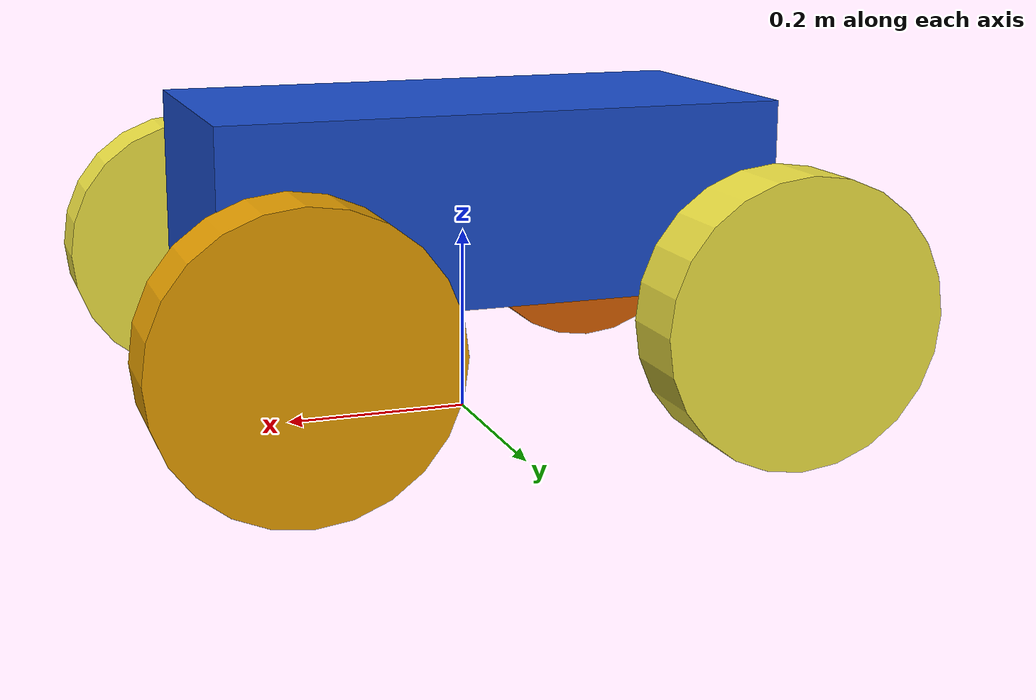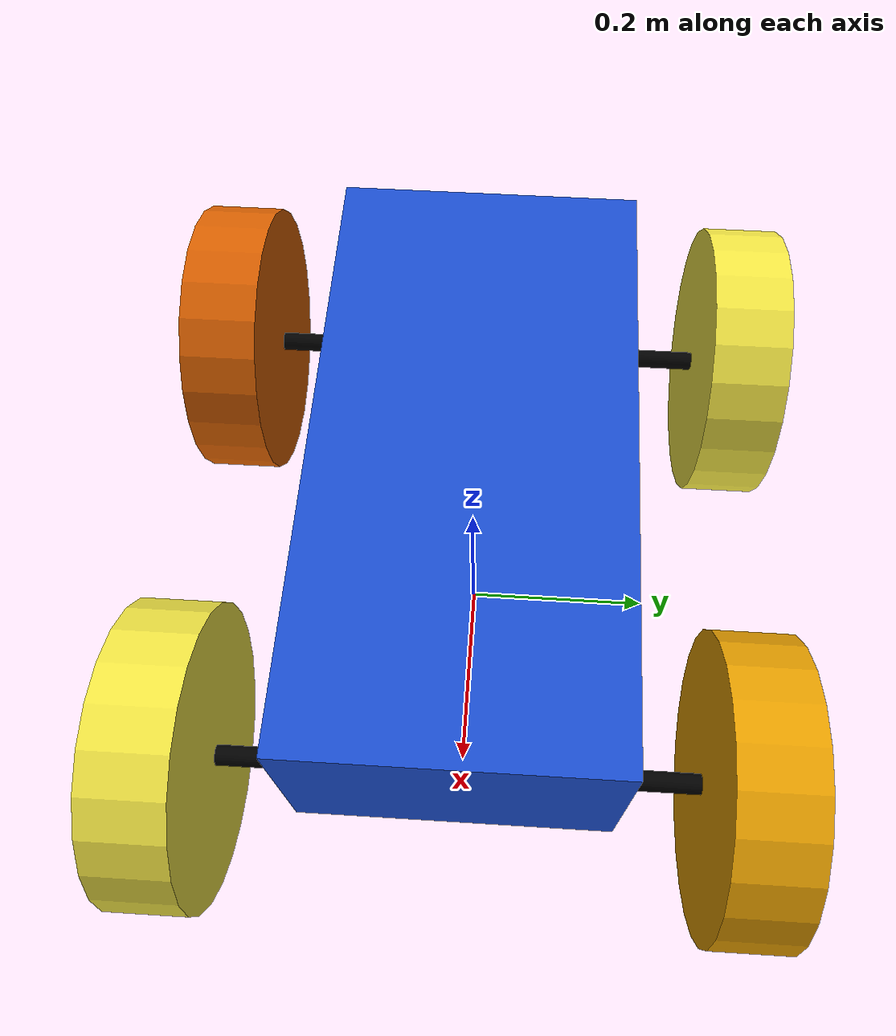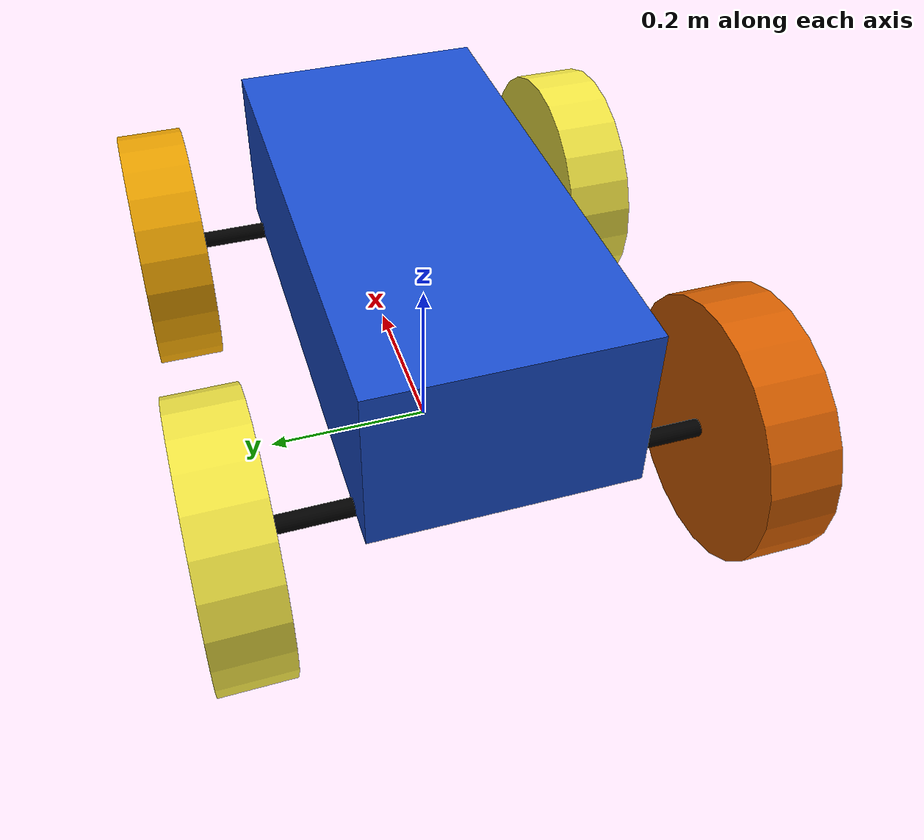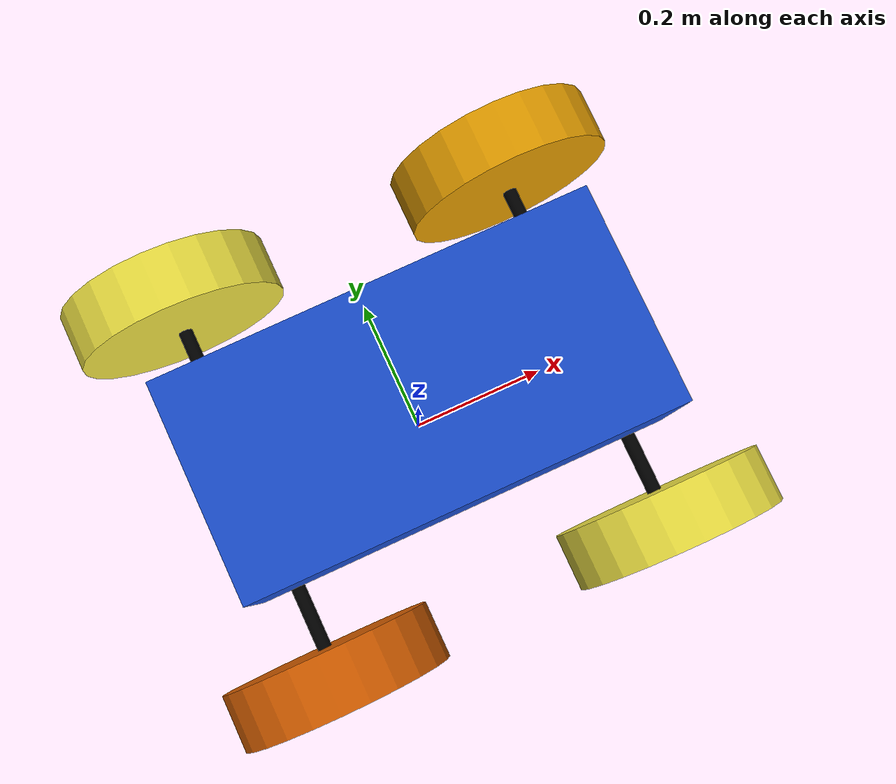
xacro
<?xml version="1.0"?>
<robot name="ackermann_robot" xmlns:xacro="http://www.ros.org/wiki/xacro">
    <xacro:include filename="common_properties.xacro"/>
    <xacro:property name="base_length" value="0.6" />
    <xacro:property name="base_width" value="0.30" />
    <xacro:property name="base_height" value="0.2" />
    <xacro:property name="wheel_radius" value="0.15" />
    <xacro:property name="wheel_length" value="0.08" />
  <!-- ================= PARAMETERS ================= -->

  <!-- ================= CHASSIS ================= -->

  <link name="base_link">

    <visual>
      <geometry>
        <box size="${base_length} ${base_width} ${base_height}"/>
      </geometry>
      <material name="blue">
        <color rgba="0.1 0.3 0.8 1.0"/>
      </material>
      <origin xyz="0 0 0.1" rpy="0 0 0"/>
    </visual>

    <collision>
      <geometry>
        <box size="${base_length} ${base_width} ${base_height}"/>
      </geometry>
      <origin xyz="0 0 0.1" rpy="0 0 0"/>
    </collision>

    <xacro:box_inertia m="15.0" x="${base_length}" y="${base_width}" z="${base_height}" o_xyz="0 0 0" o_rpy="0 0 0" />

  </link>

  <link name="base_footprint_link"/>

  <joint name="base_footprint_joint" type="fixed">
        <parent link="base_footprint_link"/>
        <child link="base_link"/>
        <origin xyz="0 0 0.15" rpy="0 0 0"/>
        <axis xyz="0 0 0" />
  </joint>

<!-- ================= REAR LEFT RACK SUPPORT================= -->

  <link name="rear_left_rack_support_link">
    <visual>
      <geometry>
        <cylinder radius="0.01" length="${base_width/2}"/>
      </geometry>
      <material name="black"/>
    </visual>

    <xacro:wheel_inertia m="1.0" r="0.01" h="${base_width/2}" o_xyz="0 0 0" o_rpy="0 0 0" />

  </link>

  <joint name="base_rear_left_rack_support_joint" type="fixed">
    <parent link="base_link"/>
    <child link="rear_left_rack_support_link"/>

    <origin xyz="${-base_length/2 + 0.05} ${(base_width/2)+0.05} 0" rpy="${pi/2} 0 0"/>

  </joint>

  <!-- ================= REAR LEFT WHEEL ================= -->

  <link name="rear_left_wheel">

    <visual>
      <origin rpy="1.5707963 0 0"/>
      <geometry>
        <cylinder radius="${wheel_radius}" length="${wheel_length}"/>
      </geometry>
    </visual>

    <collision>
      <origin rpy="1.5707963 0 0"/>
      <geometry>
        <cylinder radius="${wheel_radius}" length="${wheel_length}"/>
      </geometry>
    </collision>

    <xacro:wheel_inertia m="1.0" r="0.15" h="0.08" o_xyz="0 0 0" o_rpy="1.5707963 0 0" />

  </link>

  <joint name="rear_left_rack_wheel_joint" type="continuous">

    <parent link="rear_left_rack_support_link"/>
    <child link="rear_left_wheel"/>

    <origin xyz="0 0 ${-wheel_length}" rpy="-1.57 0 0"/>

    <axis xyz="0 1 0"/>

    <dynamics damping="0.1"/>

  </joint>

  <!-- ================= REAR RIGHT RACK SUPPORT================= -->

  <link name="rear_right_rack_support_link">
    <visual>
      <geometry>
        <cylinder radius="0.01" length="${base_width/2}"/>
      </geometry>
      <material name="black"/>
    </visual>

    <xacro:wheel_inertia m="1.0" r="0.01" h="${base_width/2}" o_xyz="0 0 0" o_rpy="0 0 0" />

  </link>

  <joint name="base_rear_right_rack_support_joint" type="fixed">
    <parent link="base_link"/>
    <child link="rear_right_rack_support_link"/>

    <origin xyz="${-base_length/2 + 0.05} ${-(base_width/2)-0.05} 0" rpy="${pi/2} 0 0"/>

  </joint>
  <!-- ================= REAR RIGHT WHEEL ================= -->

  <link name="rear_right_wheel">

    <visual>
      <origin rpy="1.5707963 0 0"/>
      <geometry>
        <cylinder radius="${wheel_radius}" length="${wheel_length}"/>
      </geometry>
    </visual>

    <collision>
      <origin rpy="1.5707963 0 0"/>
      <geometry>
        <cylinder radius="${wheel_radius}" length="${wheel_length}"/>
      </geometry>
    </collision>

    <xacro:wheel_inertia m="1.0" r="0.15" h="0.08" o_xyz="0 0 0" o_rpy="1.5707963 0 0" />

  </link>

  <joint name="rear_right_rack_wheel_joint" type="continuous">

    <parent link="rear_right_rack_support_link"/>
    <child link="rear_right_wheel"/>

    <origin xyz="0 0 ${wheel_length}" rpy="-1.57 0 0"/>

    <axis xyz="0 1 0"/>

    <dynamics damping="0.1"/>

  </joint>

  <!-- ================= FRONT LEFT RACK SUPPORT================= -->

  <link name="front_left_rack_support_link">
    <visual>
      <geometry>
        <cylinder radius="0.01" length="${base_width/2}"/>
      </geometry>
      <material name="black"/>
    </visual>

    <xacro:wheel_inertia m="1.0" r="0.01" h="${base_width/2}" o_xyz="0 0 0" o_rpy="0 0 0" />

  </link>

  <joint name="base_front_left_rack_support_joint" type="fixed">
    <parent link="base_link"/>
    <child link="front_left_rack_support_link"/>

    <origin xyz="${base_length/2 - 0.05} ${(base_width/2)+0.05} 0" rpy="${pi/2} 0 0"/>

  </joint>

  <!-- ================= FRONT LEFT STEERING SUPPORT================= -->

  <link name="front_left_steering_support_link">

    <visual>
      <geometry>
        <cylinder radius="0.015" length="${base_width/6}"/>
      </geometry>
      <material name="grey"/>
    </visual>

    <xacro:wheel_inertia m="1.0" r="0.02" h="${base_width/4}" o_xyz="0 0 0" o_rpy="0 0 0" />

  </link>

  <joint name="front_left_rack_steering_support_joint" type="revolute">
    <parent link="front_left_rack_support_link"/>
    <child link="front_left_steering_support_link"/>

    <origin xyz="0 0 ${-base_width/4}" rpy="${-pi/2} 0 0"/>
    <axis xyz="0 0 1"/>

    <limit
      lower="-0.6"
      upper="0.6"
      effort="100"
      velocity="1.5"/>

    <dynamics damping="0.2"/>

  </joint>

  <!-- ================= FRONT LEFT WHEEL ================= -->

  <link name="front_left_wheel">

    <visual>
      <origin rpy="1.5707963 0 0"/>
      <geometry>
        <cylinder radius="${wheel_radius}" length="${wheel_length}"/>
      </geometry>
    </visual>

    <collision>
      <origin rpy="1.5707963 0 0"/>
      <geometry>
        <cylinder radius="${wheel_radius}" length="${wheel_length}"/>
      </geometry>
    </collision>

    <xacro:wheel_inertia m="0.2" r="${wheel_radius}" h="${wheel_length}" o_xyz="0 0 0" o_rpy="0 0 0" />

  </link>

  <joint name="front_left_steering_support_wheel_joint" type="continuous">

    <parent link="front_left_steering_support_link"/>
    <child link="front_left_wheel"/>

    <origin xyz="0 0 0" rpy="0 ${pi/2} 0"/>

    <axis xyz="0 -1 0"/>

    <dynamics damping="0.1"/>

  </joint>

<!-- ================= FRONT RIGHT RACK SUPPORT================= -->

  <link name="front_right_rack_support_link">
    <visual>
      <geometry>
        <cylinder radius="0.01" length="${base_width/2}"/>
      </geometry>
      <material name="black"/>
    </visual>

    <xacro:wheel_inertia m="1.0" r="0.01" h="${base_width/2}" o_xyz="0 0 0" o_rpy="0 0 0" />

  </link>

  <joint name="base_front_right_rack_support_joint" type="fixed">
    <parent link="base_link"/>
    <child link="front_right_rack_support_link"/>

    <origin xyz="${base_length/2 - 0.05} ${-(base_width/2)-0.05} 0" rpy="${pi/2} 0 0"/>

  </joint>

  <!-- ================= FRONT RIGHT STEERING SUPPORT================= -->

  <link name="front_right_steering_support_link">

    <visual>
      <geometry>
        <cylinder radius="0.015" length="${base_width/6}"/>
      </geometry>
      <material name="grey"/>
    </visual>

    <xacro:wheel_inertia m="1.0" r="0.02" h="${base_width/4}" o_xyz="0 0 0" o_rpy="0 0 0" />

  </link>

  <joint name="front_right_rack_steering_support_joint" type="revolute">
    <parent link="front_right_rack_support_link"/>
    <child link="front_right_steering_support_link"/>

    <origin xyz="0 0 ${base_width/4}" rpy="${-pi/2} 0 0"/>
    <axis xyz="0 0 1"/>

    <limit
      lower="-0.6"
      upper="0.6"
      effort="100"
      velocity="1.5"/>

    <dynamics damping="0.2"/>

  </joint>

  <!-- ================= FRONT RIGHT WHEEL ================= -->

  <link name="front_right_wheel">

    <visual>
      <origin rpy="1.5707963 0 0"/>
      <geometry>
        <cylinder radius="${wheel_radius}" length="${wheel_length}"/>
      </geometry>
    </visual>

    <collision>
      <origin rpy="1.5707963 0 0"/>
      <geometry>
        <cylinder radius="${wheel_radius}" length="${wheel_length}"/>
      </geometry>
    </collision>

    <xacro:wheel_inertia m="0.2" r="${wheel_radius}" h="${wheel_length}" o_xyz="0 0 0" o_rpy="0 0 0" />

  </link>

  <joint name="front_right_steering_support_wheel_joint" type="continuous">

    <parent link="front_right_steering_support_link"/>
    <child link="front_right_wheel"/>

    <origin xyz="0 0 0" rpy="0 ${pi/2} 0"/>

    <axis xyz="0 -1 0"/>

    <dynamics damping="0.1"/>

  </joint>

  <!-- ================= ROS 2 CONTROL ================= -->

  <ros2_control name="AckermannRobotSystem" type="system">

    <hardware>
      <plugin>gz_ros2_control/GazeboSimSystem</plugin>
    </hardware>

    Rear traction joints

    <joint name="rear_left_rack_wheel_joint">
      <command_interface name="velocity"/>
      <state_interface name="position"/>
      <state_interface name="velocity"/>
    </joint>

    <joint name="rear_right_rack_wheel_joint">
      <command_interface name="velocity"/>
      <state_interface name="position"/>
      <state_interface name="velocity"/>
    </joint>

    Front steering joints

    <joint name="front_left_rack_steering_support_joint">
      <command_interface name="position"/>
      <state_interface name="position"/>
      <state_interface name="velocity"/>
    </joint>

    <joint name="front_right_rack_steering_support_joint">
      <command_interface name="position"/>
      <state_interface name="position"/>
      <state_interface name="velocity"/>
    </joint>

    Passive front wheel rotation

    <joint name="front_left_steering_support_wheel_joint">
      <state_interface name="position"/>
      <state_interface name="velocity"/>
    </joint>

    <joint name="front_right_steering_support_wheel_joint">
      <state_interface name="position"/>
      <state_interface name="velocity"/>
    </joint>

  </ros2_control>

  <!-- ================= GAZEBO CONTROL PLUGIN ================= -->

  <gazebo>

    <plugin
      filename="libgz_ros2_control-system.so"
      name="gz_ros2_control::GazeboSimROS2ControlPlugin">

      <parameters>
        $(find my_ros2_bringup)/config/ackermann_controller.yaml
      </parameters>

    </plugin>

  </gazebo>

</robot>

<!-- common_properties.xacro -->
<robot xmlns:xacro="http://www.ros.org/wiki/xacro">

    <material name="blue">
        <color rgba="0 0 1 1"/>
    </material>
    <material name="grey">
        <color rgba="0.5 0.5 0.5 1"/>
    </material>
    <material name="black">
        <color rgba="0 0 0 1"/>
    </material>
    <material name="orange">
        <color rgba="1 0.5 0 1"/>
    </material>
    <material name="yellow">
        <color rgba="1 1 0 1"/>
    </material>

    <xacro:macro name="box_inertia" params="m x y z o_xyz o_rpy">
        <inertial>
            <mass value="${m}"/>
            <origin xyz="${o_xyz}" rpy="${o_rpy}"/>
            <inertia ixx="${(m/12)*(y*y + z*z)}" ixy="0" ixz="0"
                     iyy="${(m/12)*(x*x + z*z)}" iyz="0"
                     izz="${(m/12)*(y*y + x*x)}"/>
        </inertial>
    </xacro:macro>

    <xacro:macro name="wheel_inertia" params="m r h o_xyz o_rpy">
        <inertial>
            <mass value="${m}" />
            <origin xyz="${o_xyz}" rpy="${o_rpy}" />
            <inertia ixx="${(m/12)*(3*r*r + h*h)}" ixy="0" ixz="0"
                     iyy="${(m/12)*(3*r*r + h*h)}" iyz="0"
                     izz="${0.5*m*r*r}"/>
        </inertial>
    </xacro:macro>

    <xacro:macro name="forearm_inertia" params="m r h o_xyz o_rpy">
        <inertial>
            <mass value="${m}" />
            <origin xyz="${o_xyz}" rpy="${o_rpy}" />
            <inertia ixx="${(m/12)*(3*r*r + h*h)}" ixy="0" ixz="0"
                     iyy="${(m/12)*(3*r*r + h*h)}" iyz="0"
                     izz="${0.5*m*r*r}"/>
        </inertial>
    </xacro:macro>

    <xacro:macro name="hand_inertia" params="m r h o_xyz o_rpy">
        <inertial>
            <mass value="${m}" />
            <origin xyz="${o_xyz}" rpy="${o_rpy}" />
            <inertia ixx="${(m/12)*(3*r*r + h*h)}" ixy="0" ixz="0"
                     iyy="${(m/12)*(3*r*r + h*h)}" iyz="0"
                     izz="${0.5*m*r*r}"/>
        </inertial>
    </xacro:macro>

    <xacro:macro name="caster_wheel_inertia" params="m r o_xyz o_rpy">
        <inertial>
            <mass value="${m}" />
            <origin xyz="${o_xyz}" rpy="${o_rpy}" />
            <inertia ixx="${(2/5)*m*r*r}" ixy="0" ixz="0"
                     iyy="${(2/5)*m*r*r}" iyz="0"
                     izz="${(2/5)*m*r*r}"/>
        </inertial>
    </xacro:macro>
</robot>
